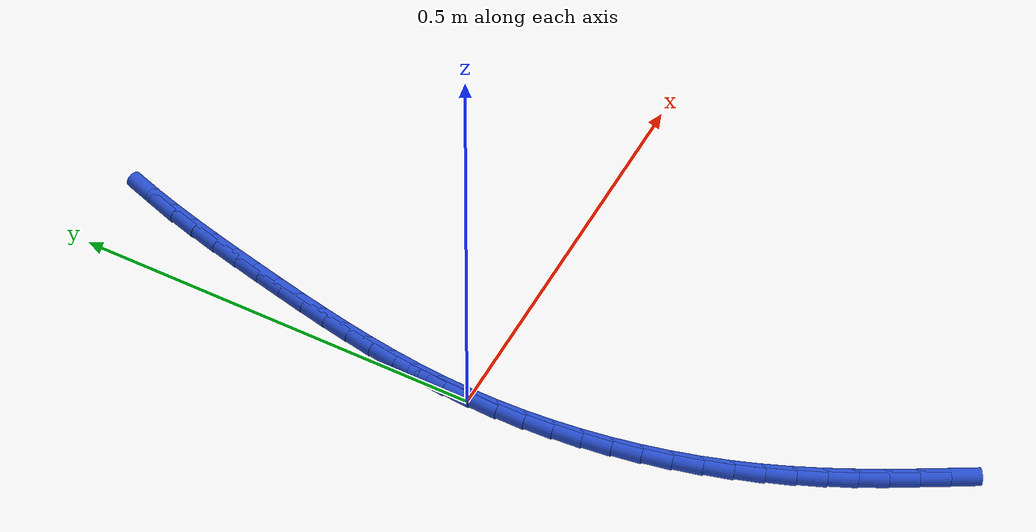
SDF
<sdf version="1.6">
 <world name="default">
  <model name="ground_plane">
   <static>1</static>
   <link name="link">
    <collision name="collision">
     <geometry><plane><normal>0 0 1</normal><size>100 100</size></plane></geometry>
     <surface><friction><ode><mu>100</mu><mu2>50</mu2></ode></friction></surface>
    </collision>
    <visual name="visual">
     <cast_shadows>0</cast_shadows>
     <geometry><plane><normal>0 0 1</normal><size>100 100</size></plane></geometry>
     <material>
      <script><uri>file://media/materials/scripts/gazebo.material</uri><name>Gazebo/WhiteGlow</name></script>
     </material>
    </visual>
   </link>
  </model>
  <model name="line">
   <link name="link_0">
    <pose>-1.734723475976807e-17 -2.0816681711721685e-17 0.01 0 1.57 1.526959184127849</pose>
    <collision name="collision">
     <geometry><cylinder><radius>0.01</radius><length>0.08</length></cylinder></geometry>
    </collision>
    <visual name="visual">
     <material>
      <script><name>Gazebo/Blue</name><uri>file://media/materials/scripts/gazebo.material</uri></script>
     </material>
     <geometry><cylinder><radius>0.01</radius><length>0.08</length></cylinder></geometry>
    </visual>
   </link>
   <link name="link_1">
    <pose>0.0014498018781147913 0.0330512660859897 0.01 0 1.57 1.4904658622891598</pose>
    <collision name="collision">
     <geometry><cylinder><radius>0.01</radius><length>0.08</length></cylinder></geometry>
    </collision>
    <visual name="visual">
     <material>
      <script><name>Gazebo/Blue</name><uri>file://media/materials/scripts/gazebo.material</uri></script>
     </material>
     <geometry><cylinder><radius>0.01</radius><length>0.08</length></cylinder></geometry>
    </visual>
   </link>
   <link name="link_2">
    <pose>0.004095249128174418 0.06591245361064582 0.01 0 1.57 1.4576380483005305</pose>
    <collision name="collision">
     <geometry><cylinder><radius>0.01</radius><length>0.08</length></cylinder></geometry>
    </collision>
    <visual name="visual">
     <material>
      <script><name>Gazebo/Blue</name><uri>file://media/materials/scripts/gazebo.material</uri></script>
     </material>
     <geometry><cylinder><radius>0.01</radius><length>0.08</length></cylinder></geometry>
    </visual>
   </link>
   <link name="link_3">
    <pose>0.007815568139779728 0.09864913165370315 0.01 0 1.57 1.4287142719330133</pose>
    <collision name="collision">
     <geometry><cylinder><radius>0.01</radius><length>0.08</length></cylinder></geometry>
    </collision>
    <visual name="visual">
     <material>
      <script><name>Gazebo/Blue</name><uri>file://media/materials/scripts/gazebo.material</uri></script>
     </material>
     <geometry><cylinder><radius>0.01</radius><length>0.08</length></cylinder></geometry>
    </visual>
   </link>
   <link name="link_4">
    <pose>0.012489985302531603 0.13132686929489668 0.01 0 1.57 1.4038517243894906</pose>
    <collision name="collision">
     <geometry><cylinder><radius>0.01</radius><length>0.08</length></cylinder></geometry>
    </collision>
    <visual name="visual">
     <material>
      <script><name>Gazebo/Blue</name><uri>file://media/materials/scripts/gazebo.material</uri></script>
     </material>
     <geometry><cylinder><radius>0.01</radius><length>0.08</length></cylinder></geometry>
    </visual>
   </link>
   <link name="link_5">
    <pose>0.01799772700603089 0.16401123561396108 0.01 0 1.57 1.3831361687776653</pose>
    <collision name="collision">
     <geometry><cylinder><radius>0.01</radius><length>0.08</length></cylinder></geometry>
    </collision>
    <visual name="visual">
     <material>
      <script><name>Gazebo/Blue</name><uri>file://media/materials/scripts/gazebo.material</uri></script>
     </material>
     <geometry><cylinder><radius>0.01</radius><length>0.08</length></cylinder></geometry>
    </visual>
   </link>
   <link name="link_6">
    <pose>0.024218019639878463 0.1967677996906313 0.01 0 1.57 1.3665933434921467</pose>
    <collision name="collision">
     <geometry><cylinder><radius>0.01</radius><length>0.08</length></cylinder></geometry>
    </collision>
    <visual name="visual">
     <material>
      <script><name>Gazebo/Blue</name><uri>file://media/materials/scripts/gazebo.material</uri></script>
     </material>
     <geometry><cylinder><radius>0.01</radius><length>0.08</length></cylinder></geometry>
    </visual>
   </link>
   <link name="link_7">
    <pose>0.031030089593675193 0.22966213060464213 0.01 0 1.57 1.3542002880115518</pose>
    <collision name="collision">
     <geometry><cylinder><radius>0.01</radius><length>0.08</length></cylinder></geometry>
    </collision>
    <visual name="visual">
     <material>
      <script><name>Gazebo/Blue</name><uri>file://media/materials/scripts/gazebo.material</uri></script>
     </material>
     <geometry><cylinder><radius>0.01</radius><length>0.08</length></cylinder></geometry>
    </visual>
   </link>
   <link name="link_8">
    <pose>0.03831316325702195 0.2627597974357286 0.01 0 1.57 1.3458955109428532</pose>
    <collision name="collision">
     <geometry><cylinder><radius>0.01</radius><length>0.08</length></cylinder></geometry>
    </collision>
    <visual name="visual">
     <material>
      <script><name>Gazebo/Blue</name><uri>file://media/materials/scripts/gazebo.material</uri></script>
     </material>
     <geometry><cylinder><radius>0.01</radius><length>0.08</length></cylinder></geometry>
    </visual>
   </link>
   <link name="link_9">
    <pose>0.045946467019519585 0.29612636926362523 0.01 0 1.57 1.3412098617240096</pose>
    <collision name="collision">
     <geometry><cylinder><radius>0.01</radius><length>0.08</length></cylinder></geometry>
    </collision>
    <visual name="visual">
     <material>
      <script><name>Gazebo/Blue</name><uri>file://media/materials/scripts/gazebo.material</uri></script>
     </material>
     <geometry><cylinder><radius>0.01</radius><length>0.08</length></cylinder></geometry>
    </visual>
   </link>
   <link name="link_10">
    <pose>0.05382022357461497 0.32981705834143815 0.01 0 1.57 1.3347790992970308</pose>
    <collision name="collision">
     <geometry><cylinder><radius>0.01</radius><length>0.08</length></cylinder></geometry>
    </collision>
    <visual name="visual">
     <material>
      <script><name>Gazebo/Blue</name><uri>file://media/materials/scripts/gazebo.material</uri></script>
     </material>
     <geometry><cylinder><radius>0.01</radius><length>0.08</length></cylinder></geometry>
    </visual>
   </link>
   <link name="link_11">
    <pose>0.06197906936808926 0.3637416429214977 0.01 0 1.57 1.322710118944405</pose>
    <collision name="collision">
     <geometry><cylinder><radius>0.01</radius><length>0.08</length></cylinder></geometry>
    </collision>
    <visual name="visual">
     <material>
      <script><name>Gazebo/Blue</name><uri>file://media/materials/scripts/gazebo.material</uri></script>
     </material>
     <geometry><cylinder><radius>0.01</radius><length>0.08</length></cylinder></geometry>
    </visual>
   </link>
   <link name="link_12">
    <pose>0.07058153503570558 0.39770263044985055 0.01 0 1.57 1.30482518065389</pose>
    <collision name="collision">
     <geometry><cylinder><radius>0.01</radius><length>0.08</length></cylinder></geometry>
    </collision>
    <visual name="visual">
     <material>
      <script><name>Gazebo/Blue</name><uri>file://media/materials/scripts/gazebo.material</uri></script>
     </material>
     <geometry><cylinder><radius>0.01</radius><length>0.08</length></cylinder></geometry>
    </visual>
   </link>
   <link name="link_13">
    <pose>0.07978880753417798 0.43150002652683755 0.01 0 1.57 1.2809009736844716</pose>
    <collision name="collision">
     <geometry><cylinder><radius>0.01</radius><length>0.08</length></cylinder></geometry>
    </collision>
    <visual name="visual">
     <material>
      <script><name>Gazebo/Blue</name><uri>file://media/materials/scripts/gazebo.material</uri></script>
     </material>
     <geometry><cylinder><radius>0.01</radius><length>0.08</length></cylinder></geometry>
    </visual>
   </link>
   <link name="link_14">
    <pose>0.08976207382022057 0.46493383675279965 0.01 0 1.57 1.2505879785619038</pose>
    <collision name="collision">
     <geometry><cylinder><radius>0.01</radius><length>0.08</length></cylinder></geometry>
    </collision>
    <visual name="visual">
     <material>
      <script><name>Gazebo/Blue</name><uri>file://media/materials/scripts/gazebo.material</uri></script>
     </material>
     <geometry><cylinder><radius>0.01</radius><length>0.08</length></cylinder></geometry>
    </visual>
   </link>
   <link name="link_184">
    <pose>0.14352401179152974 -0.5064446191641586 0.01 0 1.57 -1.0587862607139977</pose>
    <collision name="collision">
     <geometry><cylinder><radius>0.01</radius><length>0.08</length></cylinder></geometry>
    </collision>
    <visual name="visual">
     <material>
      <script><name>Gazebo/Blue</name><uri>file://media/materials/scripts/gazebo.material</uri></script>
     </material>
     <geometry><cylinder><radius>0.01</radius><length>0.08</length></cylinder></geometry>
    </visual>
   </link>
   <link name="link_185">
    <pose>0.1271158169428893 -0.47724857770703916 0.01 0 1.57 -1.0748349626620475</pose>
    <collision name="collision">
     <geometry><cylinder><radius>0.01</radius><length>0.08</length></cylinder></geometry>
    </collision>
    <visual name="visual">
     <material>
      <script><name>Gazebo/Blue</name><uri>file://media/materials/scripts/gazebo.material</uri></script>
     </material>
     <geometry><cylinder><radius>0.01</radius><length>0.08</length></cylinder></geometry>
    </visual>
   </link>
   <link name="link_186">
    <pose>0.1112831927268508 -0.4479868876323991 0.01 0 1.57 -1.095657163762422</pose>
    <collision name="collision">
     <geometry><cylinder><radius>0.01</radius><length>0.08</length></cylinder></geometry>
    </collision>
    <visual name="visual">
     <material>
      <script><name>Gazebo/Blue</name><uri>file://media/materials/scripts/gazebo.material</uri></script>
     </material>
     <geometry><cylinder><radius>0.01</radius><length>0.08</length></cylinder></geometry>
    </visual>
   </link>
   <link name="link_187">
    <pose>0.09614108596255551 -0.41855319560550025 0.01 0 1.57 -1.1212306495132982</pose>
    <collision name="collision">
     <geometry><cylinder><radius>0.01</radius><length>0.08</length></cylinder></geometry>
    </collision>
    <visual name="visual">
     <material>
      <script><name>Gazebo/Blue</name><uri>file://media/materials/scripts/gazebo.material</uri></script>
     </material>
     <geometry><cylinder><radius>0.01</radius><length>0.08</length></cylinder></geometry>
    </visual>
   </link>
   <link name="link_188">
    <pose>0.08180444346914456 -0.38884114829160427 0.01 0 1.57 -1.1514656206003544</pose>
    <collision name="collision">
     <geometry><cylinder><radius>0.01</radius><length>0.08</length></cylinder></geometry>
    </collision>
    <visual name="visual">
     <material>
      <script><name>Gazebo/Blue</name><uri>file://media/materials/scripts/gazebo.material</uri></script>
     </material>
     <geometry><cylinder><radius>0.01</radius><length>0.08</length></cylinder></geometry>
    </visual>
   </link>
   <link name="link_189">
    <pose>0.06838821206575922 -0.3587443923559726 0.01 0 1.57 -1.1861890820873946</pose>
    <collision name="collision">
     <geometry><cylinder><radius>0.01</radius><length>0.08</length></cylinder></geometry>
    </collision>
    <visual name="visual">
     <material>
      <script><name>Gazebo/Blue</name><uri>file://media/materials/scripts/gazebo.material</uri></script>
     </material>
     <geometry><cylinder><radius>0.01</radius><length>0.08</length></cylinder></geometry>
    </visual>
   </link>
   <link name="link_190">
    <pose>0.05600733857154071 -0.3281565744638672 0.01 0 1.57 -1.2250827759247411</pose>
    <collision name="collision">
     <geometry><cylinder><radius>0.01</radius><length>0.08</length></cylinder></geometry>
    </collision>
    <visual name="visual">
     <material>
      <script><name>Gazebo/Blue</name><uri>file://media/materials/scripts/gazebo.material</uri></script>
     </material>
     <geometry><cylinder><radius>0.01</radius><length>0.08</length></cylinder></geometry>
    </visual>
   </link>
   <link name="link_191">
    <pose>0.044775782562171296 -0.296973265457663 0.01 0 1.57 -1.2658249032772495</pose>
    <collision name="collision">
     <geometry><cylinder><radius>0.01</radius><length>0.08</length></cylinder></geometry>
    </collision>
    <visual name="visual">
     <material>
      <script><name>Gazebo/Blue</name><uri>file://media/materials/scripts/gazebo.material</uri></script>
     </material>
     <geometry><cylinder><radius>0.01</radius><length>0.08</length></cylinder></geometry>
    </visual>
   </link>
   <link name="link_192">
    <pose>0.03476517390387914 -0.265172538481883 0.01 0 1.57 -1.3057356470107804</pose>
    <collision name="collision">
     <geometry><cylinder><radius>0.01</radius><length>0.08</length></cylinder></geometry>
    </collision>
    <visual name="visual">
     <material>
      <script><name>Gazebo/Blue</name><uri>file://media/materials/scripts/gazebo.material</uri></script>
     </material>
     <geometry><cylinder><radius>0.01</radius><length>0.08</length></cylinder></geometry>
    </visual>
   </link>
   <link name="link_193">
    <pose>0.025989753325894527 -0.23284432041171577 0.01 0 1.57 -1.3448502718450577</pose>
    <collision name="collision">
     <geometry><cylinder><radius>0.01</radius><length>0.08</length></cylinder></geometry>
    </collision>
    <visual name="visual">
     <material>
      <script><name>Gazebo/Blue</name><uri>file://media/materials/scripts/gazebo.material</uri></script>
     </material>
     <geometry><cylinder><radius>0.01</radius><length>0.08</length></cylinder></geometry>
    </visual>
   </link>
   <link name="link_194">
    <pose>0.01845967469097223 -0.2000865035890939 0.01 0 1.57 -1.3833968648381738</pose>
    <collision name="collision">
     <geometry><cylinder><radius>0.01</radius><length>0.08</length></cylinder></geometry>
    </collision>
    <visual name="visual">
     <material>
      <script><name>Gazebo/Blue</name><uri>file://media/materials/scripts/gazebo.material</uri></script>
     </material>
     <geometry><cylinder><radius>0.01</radius><length>0.08</length></cylinder></geometry>
    </visual>
   </link>
   <link name="link_195">
    <pose>0.012185091861866755 -0.16699698035594931 0.01 0 1.57 -1.4216002115036521</pose>
    <collision name="collision">
     <geometry><cylinder><radius>0.01</radius><length>0.08</length></cylinder></geometry>
    </collision>
    <visual name="visual">
     <material>
      <script><name>Gazebo/Blue</name><uri>file://media/materials/scripts/gazebo.material</uri></script>
     </material>
     <geometry><cylinder><radius>0.01</radius><length>0.08</length></cylinder></geometry>
    </visual>
   </link>
   <link name="link_196">
    <pose>0.007176158701332621 -0.13367364305421373 0.01 0 1.57 -1.459683471293551</pose>
    <collision name="collision">
     <geometry><cylinder><radius>0.01</radius><length>0.08</length></cylinder></geometry>
    </collision>
    <visual name="visual">
     <material>
      <script><name>Gazebo/Blue</name><uri>file://media/materials/scripts/gazebo.material</uri></script>
     </material>
     <geometry><cylinder><radius>0.01</radius><length>0.08</length></cylinder></geometry>
    </visual>
   </link>
   <link name="link_197">
    <pose>0.0034430290721243545 -0.10021438402581916 0.01 0 1.57 -1.4978700514394057</pose>
    <collision name="collision">
     <geometry><cylinder><radius>0.01</radius><length>0.08</length></cylinder></geometry>
    </collision>
    <visual name="visual">
     <material>
      <script><name>Gazebo/Blue</name><uri>file://media/materials/scripts/gazebo.material</uri></script>
     </material>
     <geometry><cylinder><radius>0.01</radius><length>0.08</length></cylinder></geometry>
    </visual>
   </link>
   <link name="link_198">
    <pose>0.0009958568369964798 -0.06671709561269742 0.01 0 1.57 -1.5363855848406442</pose>
    <collision name="collision">
     <geometry><cylinder><radius>0.01</radius><length>0.08</length></cylinder></geometry>
    </collision>
    <visual name="visual">
     <material>
      <script><name>Gazebo/Blue</name><uri>file://media/materials/scripts/gazebo.material</uri></script>
     </material>
     <geometry><cylinder><radius>0.01</radius><length>0.08</length></cylinder></geometry>
    </visual>
   </link>
   <link name="link_199">
    <pose>-0.00015520414129648573 -0.0332796701567804 0.01 0 1.57 1.5661327284065223</pose>
    <collision name="collision">
     <geometry><cylinder><radius>0.01</radius><length>0.08</length></cylinder></geometry>
    </collision>
    <visual name="visual">
     <material>
      <script><name>Gazebo/Blue</name><uri>file://media/materials/scripts/gazebo.material</uri></script>
     </material>
     <geometry><cylinder><radius>0.01</radius><length>0.08</length></cylinder></geometry>
    </visual>
   </link>
   <link name="link_200">
    <pose>-1.734723475976807e-17 2.7755575615628914e-17 0.01 0 1.57 1.5262635879210342</pose>
    <collision name="collision">
     <geometry><cylinder><radius>0.01</radius><length>0.08</length></cylinder></geometry>
    </collision>
    <visual name="visual">
     <material>
      <script><name>Gazebo/Blue</name><uri>file://media/materials/scripts/gazebo.material</uri></script>
     </material>
     <geometry><cylinder><radius>0.01</radius><length>0.08</length></cylinder></geometry>
    </visual>
   </link>
   <link name="link_201">
    <pose>0.001471623123640452 0.033024022515712737 0.01 0 1.57 1.5262635879210342</pose>
    <collision name="collision">
     <geometry><cylinder><radius>0.01</radius><length>0.08</length></cylinder></geometry>
    </collision>
    <visual name="visual">
     <material>
      <script><name>Gazebo/Blue</name><uri>file://media/materials/scripts/gazebo.material</uri></script>
     </material>
     <geometry><cylinder><radius>0.01</radius><length>0.08</length></cylinder></geometry>
    </visual>
   </link>
  </model>
 </world>
</sdf>
